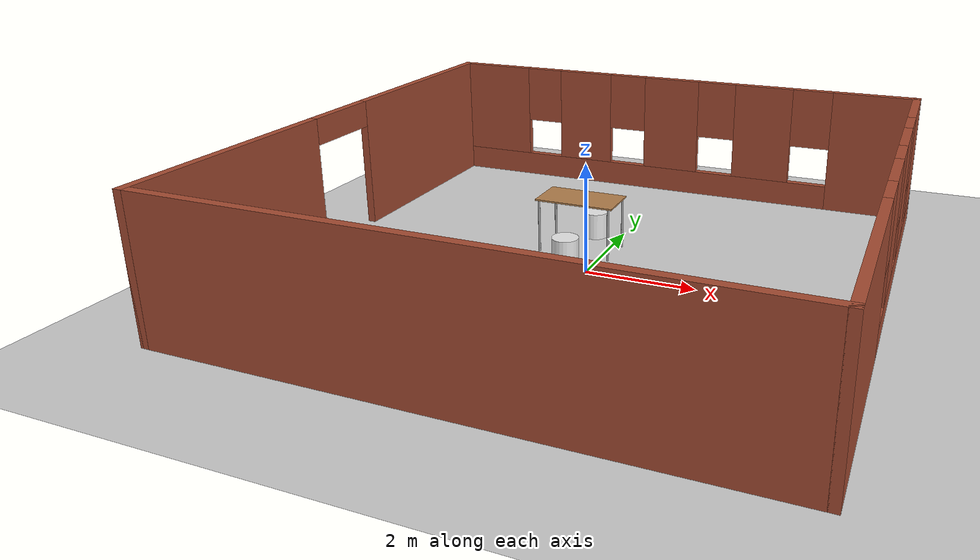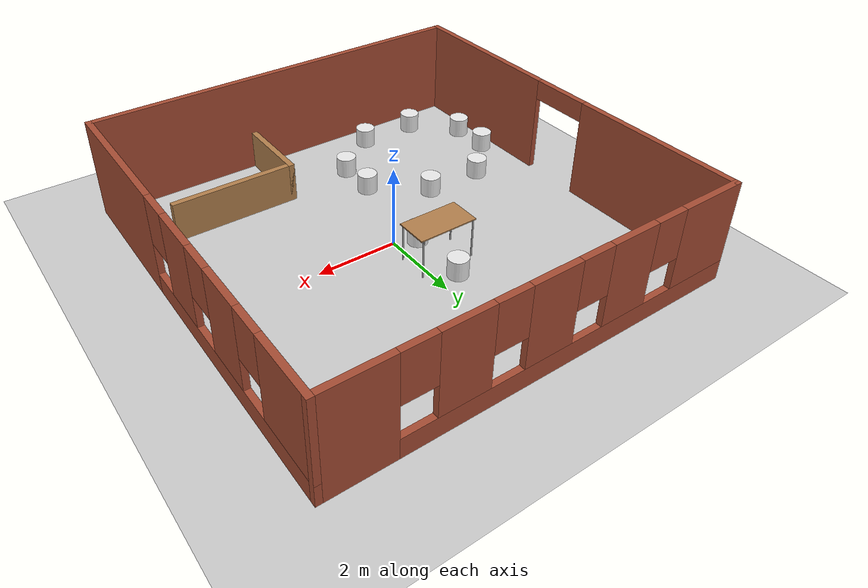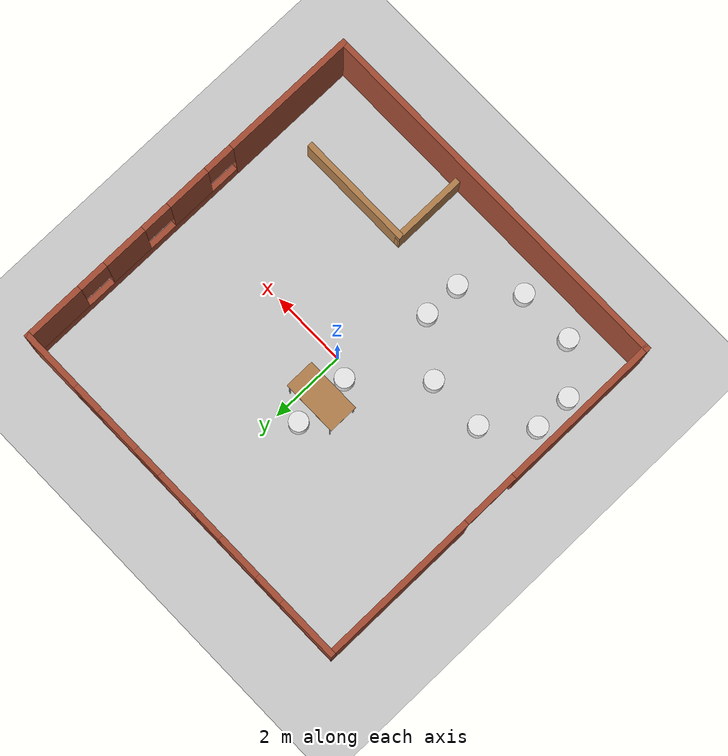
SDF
<sdf version="1.6">
 <world name="default">
  <model name="ground_plane">
   <static>1</static>
   <link name="link">
    <collision name="collision">
     <geometry><plane><normal>0 0 1</normal><size>100 100</size></plane></geometry>
     <surface>
      <contact><collide_bitmask>65535</collide_bitmask></contact>
      <friction><ode><mu>100</mu><mu2>50</mu2></ode></friction>
     </surface>
    </collision>
    <visual name="visual">
     <cast_shadows>0</cast_shadows>
     <geometry><plane><normal>0 0 1</normal><size>100 100</size></plane></geometry>
     <material>
      <script><uri>file://media/materials/scripts/gazebo.material</uri><name>Gazebo/Grey</name></script>
     </material>
    </visual>
   </link>
  </model>
  <model name="cafeteria">
   <link name="Wall_0">
    <collision name="Wall_0_Collision">
     <geometry><box><size>10.15 0.15 2.5</size></box></geometry>
     <pose>0 0 1.25 0 -0 0</pose>
    </collision>
    <visual name="Wall_0_Visual">
     <pose>0 0 1.25 0 -0 0</pose>
     <geometry><box><size>10.15 0.15 2.5</size></box></geometry>
     <material>
      <script><uri>file://media/materials/scripts/gazebo.material</uri><name>Gazebo/Bricks</name></script>
      <ambient>1 1 1 1</ambient>
     </material>
     <meta><layer>0</layer></meta>
    </visual>
    <pose>-0 -5 0 0 -0 0</pose>
   </link>
   <link name="Wall_1">
    <pose>5 -0 0 0 -0 1.5708</pose>
    <visual name="Wall_1_Visual_0">
     <pose>-3.2375 0 1.25 0 -0 0</pose>
     <geometry><box><size>3.675 0.15 2.5</size></box></geometry>
     <material>
      <script><uri>file://media/materials/scripts/gazebo.material</uri><name>Gazebo/Bricks</name></script>
      <ambient>1 1 1 1</ambient>
     </material>
     <meta><layer>0</layer></meta>
    </visual>
    <collision name="Wall_1_Collision_0">
     <geometry><box><size>3.675 0.15 2.5</size></box></geometry>
     <pose>-3.2375 0 1.25 0 -0 0</pose>
    </collision>
    <visual name="Wall_1_Visual_1">
     <pose>1.8375 0 0.25 0 -0 0</pose>
     <geometry><box><size>6.475 0.15 0.5</size></box></geometry>
     <material>
      <script><uri>file://media/materials/scripts/gazebo.material</uri><name>Gazebo/Bricks</name></script>
      <ambient>1 1 1 1</ambient>
     </material>
     <meta><layer>0</layer></meta>
    </visual>
    <collision name="Wall_1_Collision_1">
     <geometry><box><size>6.475 0.15 0.5</size></box></geometry>
     <pose>1.8375 0 0.25 0 -0 0</pose>
    </collision>
    <visual name="Wall_1_Visual_2">
     <pose>0 0 1.5 0 -0 0</pose>
     <geometry><box><size>1.2 0.15 2</size></box></geometry>
     <material>
      <script><uri>file://media/materials/scripts/gazebo.material</uri><name>Gazebo/Bricks</name></script>
      <ambient>1 1 1 1</ambient>
     </material>
     <meta><layer>0</layer></meta>
    </visual>
    <collision name="Wall_1_Collision_2">
     <geometry><box><size>1.2 0.15 2</size></box></geometry>
     <pose>0 0 1.5 0 -0 0</pose>
    </collision>
    <visual name="Wall_1_Visual_3">
     <pose>2 0 1.5 0 -0 0</pose>
     <geometry><box><size>1.2 0.15 2</size></box></geometry>
     <material>
      <script><uri>file://media/materials/scripts/gazebo.material</uri><name>Gazebo/Bricks</name></script>
      <ambient>1 1 1 1</ambient>
     </material>
     <meta><layer>0</layer></meta>
    </visual>
    <collision name="Wall_1_Collision_3">
     <geometry><box><size>1.2 0.15 2</size></box></geometry>
     <pose>2 0 1.5 0 -0 0</pose>
    </collision>
    <visual name="Wall_1_Visual_4">
     <pose>4.2375 0 1.5 0 -0 0</pose>
     <geometry><box><size>1.675 0.15 2</size></box></geometry>
     <material>
      <script><uri>file://media/materials/scripts/gazebo.material</uri><name>Gazebo/Bricks</name></script>
      <ambient>1 1 1 1</ambient>
     </material>
     <meta><layer>0</layer></meta>
    </visual>
    <collision name="Wall_1_Collision_4">
     <geometry><box><size>1.675 0.15 2</size></box></geometry>
     <pose>4.2375 0 1.5 0 -0 0</pose>
    </collision>
    <visual name="Wall_1_Visual_5">
     <pose>-1 0 1.9 0 -0 0</pose>
     <geometry><box><size>0.8 0.15 1.2</size></box></geometry>
     <material>
      <script><uri>file://media/materials/scripts/gazebo.material</uri><name>Gazebo/Bricks</name></script>
      <ambient>1 1 1 1</ambient>
     </material>
     <meta><layer>0</layer></meta>
    </visual>
    <collision name="Wall_1_Collision_5">
     <geometry><box><size>0.8 0.15 1.2</size></box></geometry>
     <pose>-1 0 1.9 0 -0 0</pose>
    </collision>
    <visual name="Wall_1_Visual_6">
     <pose>1 0 1.9 0 -0 0</pose>
     <geometry><box><size>0.8 0.15 1.2</size></box></geometry>
     <material>
      <script><uri>file://media/materials/scripts/gazebo.material</uri><name>Gazebo/Bricks</name></script>
      <ambient>1 1 1 1</ambient>
     </material>
     <meta><layer>0</layer></meta>
    </visual>
    <collision name="Wall_1_Collision_6">
     <geometry><box><size>0.8 0.15 1.2</size></box></geometry>
     <pose>1 0 1.9 0 -0 0</pose>
    </collision>
    <visual name="Wall_1_Visual_7">
     <pose>3 0 1.9 0 -0 0</pose>
     <geometry><box><size>0.8 0.15 1.2</size></box></geometry>
     <material>
      <script><uri>file://media/materials/scripts/gazebo.material</uri><name>Gazebo/Bricks</name></script>
      <ambient>1 1 1 1</ambient>
     </material>
     <meta><layer>0</layer></meta>
    </visual>
    <collision name="Wall_1_Collision_7">
     <geometry><box><size>0.8 0.15 1.2</size></box></geometry>
     <pose>3 0 1.9 0 -0 0</pose>
    </collision>
   </link>
   <link name="Wall_2">
    <pose>-0 5 0 0 -0 3.14159</pose>
    <visual name="Wall_2_Visual_0">
     <pose>-4.2375 0 1.25 0 -0 0</pose>
     <geometry><box><size>1.675 0.15 2.5</size></box></geometry>
     <material>
      <script><uri>file://media/materials/scripts/gazebo.material</uri><name>Gazebo/Bricks</name></script>
      <ambient>1 1 1 1</ambient>
     </material>
     <meta><layer>0</layer></meta>
    </visual>
    <collision name="Wall_2_Collision_0">
     <geometry><box><size>1.675 0.15 2.5</size></box></geometry>
     <pose>-4.2375 0 1.25 0 -0 0</pose>
    </collision>
    <visual name="Wall_2_Visual_1">
     <pose>0.8375 0 0.25 0 -0 0</pose>
     <geometry><box><size>8.475 0.15 0.5</size></box></geometry>
     <material>
      <script><uri>file://media/materials/scripts/gazebo.material</uri><name>Gazebo/Bricks</name></script>
      <ambient>1 1 1 1</ambient>
     </material>
     <meta><layer>0</layer></meta>
    </visual>
    <collision name="Wall_2_Collision_1">
     <geometry><box><size>8.475 0.15 0.5</size></box></geometry>
     <pose>0.8375 0 0.25 0 -0 0</pose>
    </collision>
    <visual name="Wall_2_Visual_2">
     <pose>-2 0 1.5 0 -0 0</pose>
     <geometry><box><size>1.2 0.15 2</size></box></geometry>
     <material>
      <script><uri>file://media/materials/scripts/gazebo.material</uri><name>Gazebo/Bricks</name></script>
      <ambient>1 1 1 1</ambient>
     </material>
     <meta><layer>0</layer></meta>
    </visual>
    <collision name="Wall_2_Collision_2">
     <geometry><box><size>1.2 0.15 2</size></box></geometry>
     <pose>-2 0 1.5 0 -0 0</pose>
    </collision>
    <visual name="Wall_2_Visual_3">
     <pose>0 0 1.5 0 -0 0</pose>
     <geometry><box><size>1.2 0.15 2</size></box></geometry>
     <material>
      <script><uri>file://media/materials/scripts/gazebo.material</uri><name>Gazebo/Bricks</name></script>
      <ambient>1 1 1 1</ambient>
     </material>
     <meta><layer>0</layer></meta>
    </visual>
    <collision name="Wall_2_Collision_3">
     <geometry><box><size>1.2 0.15 2</size></box></geometry>
     <pose>0 0 1.5 0 -0 0</pose>
    </collision>
    <visual name="Wall_2_Visual_4">
     <pose>2 0 1.5 0 -0 0</pose>
     <geometry><box><size>1.2 0.15 2</size></box></geometry>
     <material>
      <script><uri>file://media/materials/scripts/gazebo.material</uri><name>Gazebo/Bricks</name></script>
      <ambient>1 1 1 1</ambient>
     </material>
     <meta><layer>0</layer></meta>
    </visual>
    <collision name="Wall_2_Collision_4">
     <geometry><box><size>1.2 0.15 2</size></box></geometry>
     <pose>2 0 1.5 0 -0 0</pose>
    </collision>
    <visual name="Wall_2_Visual_5">
     <pose>4.2375 0 1.5 0 -0 0</pose>
     <geometry><box><size>1.675 0.15 2</size></box></geometry>
     <material>
      <script><uri>file://media/materials/scripts/gazebo.material</uri><name>Gazebo/Bricks</name></script>
      <ambient>1 1 1 1</ambient>
     </material>
     <meta><layer>0</layer></meta>
    </visual>
    <collision name="Wall_2_Collision_5">
     <geometry><box><size>1.675 0.15 2</size></box></geometry>
     <pose>4.2375 0 1.5 0 -0 0</pose>
    </collision>
    <visual name="Wall_2_Visual_6">
     <pose>-3 0 1.9 0 -0 0</pose>
     <geometry><box><size>0.8 0.15 1.2</size></box></geometry>
     <material>
      <script><uri>file://media/materials/scripts/gazebo.material</uri><name>Gazebo/Bricks</name></script>
      <ambient>1 1 1 1</ambient>
     </material>
     <meta><layer>0</layer></meta>
    </visual>
    <collision name="Wall_2_Collision_6">
     <geometry><box><size>0.8 0.15 1.2</size></box></geometry>
     <pose>-3 0 1.9 0 -0 0</pose>
    </collision>
    <visual name="Wall_2_Visual_7">
     <pose>-1 0 1.9 0 -0 0</pose>
     <geometry><box><size>0.8 0.15 1.2</size></box></geometry>
     <material>
      <script><uri>file://media/materials/scripts/gazebo.material</uri><name>Gazebo/Bricks</name></script>
      <ambient>1 1 1 1</ambient>
     </material>
     <meta><layer>0</layer></meta>
    </visual>
    <collision name="Wall_2_Collision_7">
     <geometry><box><size>0.8 0.15 1.2</size></box></geometry>
     <pose>-1 0 1.9 0 -0 0</pose>
    </collision>
    <visual name="Wall_2_Visual_8">
     <pose>1 0 1.9 0 -0 0</pose>
     <geometry><box><size>0.8 0.15 1.2</size></box></geometry>
     <material>
      <script><uri>file://media/materials/scripts/gazebo.material</uri><name>Gazebo/Bricks</name></script>
      <ambient>1 1 1 1</ambient>
     </material>
     <meta><layer>0</layer></meta>
    </visual>
    <collision name="Wall_2_Collision_8">
     <geometry><box><size>0.8 0.15 1.2</size></box></geometry>
     <pose>1 0 1.9 0 -0 0</pose>
    </collision>
    <visual name="Wall_2_Visual_9">
     <pose>3 0 1.9 0 -0 0</pose>
     <geometry><box><size>0.8 0.15 1.2</size></box></geometry>
     <material>
      <script><uri>file://media/materials/scripts/gazebo.material</uri><name>Gazebo/Bricks</name></script>
      <ambient>1 1 1 1</ambient>
     </material>
     <meta><layer>0</layer></meta>
    </visual>
    <collision name="Wall_2_Collision_9">
     <geometry><box><size>0.8 0.15 1.2</size></box></geometry>
     <pose>3 0 1.9 0 -0 0</pose>
    </collision>
   </link>
   <link name="Wall_3">
    <pose>-5 -0 0 0 -0 -1.5708</pose>
    <visual name="Wall_3_Visual_0">
     <pose>-2.9125 0 1.25 0 -0 0</pose>
     <geometry><box><size>4.325 0.15 2.5</size></box></geometry>
     <material>
      <script><uri>file://media/materials/scripts/gazebo.material</uri><name>Gazebo/Bricks</name></script>
      <ambient>1 1 1 1</ambient>
     </material>
     <meta><layer>0</layer></meta>
    </visual>
    <collision name="Wall_3_Collision_0">
     <geometry><box><size>4.325 0.15 2.5</size></box></geometry>
     <pose>-2.9125 0 1.25 0 -0 0</pose>
    </collision>
    <visual name="Wall_3_Visual_1">
     <pose>2.9125 0 1.25 0 -0 0</pose>
     <geometry><box><size>4.325 0.15 2.5</size></box></geometry>
     <material>
      <script><uri>file://media/materials/scripts/gazebo.material</uri><name>Gazebo/Bricks</name></script>
      <ambient>1 1 1 1</ambient>
     </material>
     <meta><layer>0</layer></meta>
    </visual>
    <collision name="Wall_3_Collision_1">
     <geometry><box><size>4.325 0.15 2.5</size></box></geometry>
     <pose>2.9125 0 1.25 0 -0 0</pose>
    </collision>
    <visual name="Wall_3_Visual_2">
     <pose>0 0 2.25 0 -0 0</pose>
     <geometry><box><size>1.5 0.15 0.5</size></box></geometry>
     <material>
      <script><uri>file://media/materials/scripts/gazebo.material</uri><name>Gazebo/Bricks</name></script>
      <ambient>1 1 1 1</ambient>
     </material>
     <meta><layer>0</layer></meta>
    </visual>
    <collision name="Wall_3_Collision_2">
     <geometry><box><size>1.5 0.15 0.5</size></box></geometry>
     <pose>0 0 2.25 0 -0 0</pose>
    </collision>
   </link>
   <link name="Wall_5">
    <collision name="Wall_5_Collision">
     <geometry><box><size>2.06 0.15 1</size></box></geometry>
     <pose>0 0 0.5 0 -0 0</pose>
    </collision>
    <visual name="Wall_5_Visual">
     <pose>0 0 0.5 0 -0 0</pose>
     <geometry><box><size>2.06 0.15 1</size></box></geometry>
     <material>
      <script><uri>file://media/materials/scripts/gazebo.material</uri><name>Gazebo/Wood</name></script>
      <ambient>1 1 1 1</ambient>
     </material>
     <meta><layer>0</layer></meta>
    </visual>
    <pose>1 -3.955 0 0 -0 1.5708</pose>
   </link>
   <link name="Wall_6">
    <collision name="Wall_6_Collision">
     <geometry><box><size>3.15 0.15 1</size></box></geometry>
     <pose>0 0 0.5 0 -0 0</pose>
    </collision>
    <visual name="Wall_6_Visual">
     <pose>0 0 0.5 0 -0 0</pose>
     <geometry><box><size>3.15 0.15 1</size></box></geometry>
     <material>
      <script><uri>file://media/materials/scripts/gazebo.material</uri><name>Gazebo/Wood</name></script>
      <ambient>1 1 1 1</ambient>
     </material>
     <meta><layer>0</layer></meta>
    </visual>
    <pose>2.5 -3 0 0 -0 0</pose>
   </link>
   <static>1</static>
  </model>
  <model name="table_0">
   <static>1</static>
   <link name="link">
    <collision name="surface">
     <pose>0 0 1 0 -0 0</pose>
     <geometry><box><size>1.5 0.8 0.03</size></box></geometry>
     <surface><friction><ode><mu>0.6</mu><mu2>0.6</mu2></ode></friction></surface>
    </collision>
    <visual name="visual1">
     <pose>0 0 1 0 -0 0</pose>
     <geometry><box><size>1.5 0.8 0.03</size></box></geometry>
     <material>
      <script><uri>file://media/materials/scripts/gazebo.material</uri><name>Gazebo/Wood</name></script>
     </material>
    </visual>
    <collision name="front_left_leg">
     <pose>0.68 0.38 0.5 0 -0 0</pose>
     <geometry><cylinder><radius>0.02</radius><length>1</length></cylinder></geometry>
    </collision>
    <visual name="front_left_leg">
     <pose>0.68 0.38 0.5 0 -0 0</pose>
     <geometry><cylinder><radius>0.02</radius><length>1</length></cylinder></geometry>
     <material>
      <script><uri>file://media/materials/scripts/gazebo.material</uri><name>Gazebo/Grey</name></script>
     </material>
    </visual>
    <collision name="front_right_leg">
     <pose>0.68 -0.38 0.5 0 -0 0</pose>
     <geometry><cylinder><radius>0.02</radius><length>1</length></cylinder></geometry>
    </collision>
    <visual name="front_right_leg">
     <pose>0.68 -0.38 0.5 0 -0 0</pose>
     <geometry><cylinder><radius>0.02</radius><length>1</length></cylinder></geometry>
     <material>
      <script><uri>file://media/materials/scripts/gazebo.material</uri><name>Gazebo/Grey</name></script>
     </material>
    </visual>
    <collision name="back_right_leg">
     <pose>-0.68 -0.38 0.5 0 -0 0</pose>
     <geometry><cylinder><radius>0.02</radius><length>1</length></cylinder></geometry>
    </collision>
    <visual name="back_right_leg">
     <pose>-0.68 -0.38 0.5 0 -0 0</pose>
     <geometry><cylinder><radius>0.02</radius><length>1</length></cylinder></geometry>
     <material>
      <script><uri>file://media/materials/scripts/gazebo.material</uri><name>Gazebo/Grey</name></script>
     </material>
    </visual>
    <collision name="back_left_leg">
     <pose>-0.68 0.38 0.5 0 -0 0</pose>
     <geometry><cylinder><radius>0.02</radius><length>1</length></cylinder></geometry>
    </collision>
    <visual name="back_left_leg">
     <pose>-0.68 0.38 0.5 0 -0 0</pose>
     <geometry><cylinder><radius>0.02</radius><length>1</length></cylinder></geometry>
     <material>
      <script><uri>file://media/materials/scripts/gazebo.material</uri><name>Gazebo/Grey</name></script>
     </material>
    </visual>
   </link>
   <pose>-0.5 1 0 0 -0 0</pose>
  </model>
  <model name="chair3_1">
   <link name="link_1">
    <inertial>
     <mass>1</mass>
     <inertia><ixx>0.145833</ixx><ixy>0</ixy><ixz>0</ixz><iyy>0.145833</iyy><iyz>0</iyz><izz>0.125</izz></inertia>
    </inertial>
    <visual name="visual">
     <geometry><cylinder><radius>0.25</radius><length>0.5</length></cylinder></geometry>
     <material>
      <lighting>1</lighting>
      <script><uri>file://media/materials/scripts/gazebo.material</uri><name>Gazebo/White</name></script>
      <shader type="vertex"><normal_map>__default__</normal_map></shader>
      <ambient>0.9 0.7 0.5 1</ambient>
      <diffuse>0.7 0.7 0.7 1</diffuse>
      <specular>0.01 0.01 0.01 1</specular>
      <emissive>0 0 0 1</emissive>
     </material>
    </visual>
    <collision name="collision">
     <geometry><cylinder><radius>0.25</radius><length>0.5</length></cylinder></geometry>
     <surface>
      <friction>
       <ode><mu>1</mu><mu2>1</mu2><fdir1>0 0 0</fdir1><slip1>0</slip1><slip2>0</slip2></ode>
       <torsional>
        <coefficient>1</coefficient>
        <patch_radius>0</patch_radius>
        <surface_radius>0</surface_radius>
        <use_patch_radius>1</use_patch_radius>
        <ode><slip>0</slip></ode>
       </torsional>
      </friction>
      <bounce><restitution_coefficient>0</restitution_coefficient><threshold>1e+06</threshold></bounce>
      <contact>
       <collide_without_contact>0</collide_without_contact>
       <collide_without_contact_bitmask>1</collide_without_contact_bitmask>
       <collide_bitmask>1</collide_bitmask>
       <ode>
        <soft_cfm>0</soft_cfm>
        <soft_erp>0.2</soft_erp>
        <kp>1e+13</kp>
        <kd>1</kd>
        <max_vel>0.01</max_vel>
        <min_depth>0</min_depth>
       </ode>
       <bullet>
        <split_impulse>1</split_impulse>
        <split_impulse_penetration_threshold>-0.01</split_impulse_penetration_threshold>
        <soft_cfm>0</soft_cfm>
        <soft_erp>0.2</soft_erp>
        <kp>1e+13</kp>
        <kd>1</kd>
       </bullet>
      </contact>
     </surface>
    </collision>
   </link>
   <link name="link_1_clone">
    <inertial>
     <mass>1</mass>
     <inertia><ixx>0.145833</ixx><ixy>0</ixy><ixz>0</ixz><iyy>0.145833</iyy><iyz>0</iyz><izz>0.125</izz></inertia>
    </inertial>
    <pose>0 -1.5 0 0 -0 0</pose>
    <visual name="visual">
     <geometry><cylinder><radius>0.25</radius><length>0.5</length></cylinder></geometry>
     <material>
      <lighting>1</lighting>
      <script><uri>file://media/materials/scripts/gazebo.material</uri><name>Gazebo/White</name></script>
      <shader type="vertex"><normal_map>__default__</normal_map></shader>
      <ambient>0.9 0.7 0.5 1</ambient>
      <diffuse>0.7 0.7 0.7 1</diffuse>
      <specular>0.01 0.01 0.01 1</specular>
      <emissive>0 0 0 1</emissive>
     </material>
    </visual>
    <collision name="collision">
     <geometry><cylinder><radius>0.25</radius><length>0.5</length></cylinder></geometry>
     <surface>
      <friction>
       <ode><mu>1</mu><mu2>1</mu2><fdir1>0 0 0</fdir1><slip1>0</slip1><slip2>0</slip2></ode>
       <torsional>
        <coefficient>1</coefficient>
        <patch_radius>0</patch_radius>
        <surface_radius>0</surface_radius>
        <use_patch_radius>1</use_patch_radius>
        <ode><slip>0</slip></ode>
       </torsional>
      </friction>
      <bounce><restitution_coefficient>0</restitution_coefficient><threshold>1e+06</threshold></bounce>
      <contact>
       <collide_without_contact>0</collide_without_contact>
       <collide_without_contact_bitmask>1</collide_without_contact_bitmask>
       <collide_bitmask>1</collide_bitmask>
       <ode>
        <soft_cfm>0</soft_cfm>
        <soft_erp>0.2</soft_erp>
        <kp>1e+13</kp>
        <kd>1</kd>
        <max_vel>0.01</max_vel>
        <min_depth>0</min_depth>
       </ode>
       <bullet>
        <split_impulse>1</split_impulse>
        <split_impulse_penetration_threshold>-0.01</split_impulse_penetration_threshold>
        <soft_cfm>0</soft_cfm>
        <soft_erp>0.2</soft_erp>
        <kp>1e+13</kp>
        <kd>1</kd>
       </bullet>
      </contact>
     </surface>
    </collision>
   </link>
   <static>0</static>
   <pose>-0.5 1.75 0.25 0 -0 0</pose>
  </model>
  <model name="chair4">
   <link name="link_1">
    <inertial>
     <mass>1</mass>
     <inertia><ixx>0.145833</ixx><ixy>0</ixy><ixz>0</ixz><iyy>0.145833</iyy><iyz>0</iyz><izz>0.125</izz></inertia>
    </inertial>
    <visual name="visual">
     <geometry><cylinder><radius>0.25</radius><length>0.5</length></cylinder></geometry>
     <material>
      <lighting>1</lighting>
      <script><uri>file://media/materials/scripts/gazebo.material</uri><name>Gazebo/White</name></script>
      <shader type="vertex"><normal_map>__default__</normal_map></shader>
      <ambient>0.9 0.7 0.5 1</ambient>
      <diffuse>0.7 0.7 0.7 1</diffuse>
      <specular>0.01 0.01 0.01 1</specular>
      <emissive>0 0 0 1</emissive>
     </material>
    </visual>
    <collision name="collision">
     <geometry><cylinder><radius>0.25</radius><length>0.5</length></cylinder></geometry>
     <surface>
      <friction>
       <ode><mu>1</mu><mu2>1</mu2><fdir1>0 0 0</fdir1><slip1>0</slip1><slip2>0</slip2></ode>
       <torsional>
        <coefficient>1</coefficient>
        <patch_radius>0</patch_radius>
        <surface_radius>0</surface_radius>
        <use_patch_radius>1</use_patch_radius>
        <ode><slip>0</slip></ode>
       </torsional>
      </friction>
      <bounce><restitution_coefficient>0</restitution_coefficient><threshold>1e+06</threshold></bounce>
      <contact>
       <collide_without_contact>0</collide_without_contact>
       <collide_without_contact_bitmask>1</collide_without_contact_bitmask>
       <collide_bitmask>1</collide_bitmask>
       <ode>
        <soft_cfm>0</soft_cfm>
        <soft_erp>0.2</soft_erp>
        <kp>1e+13</kp>
        <kd>1</kd>
        <max_vel>0.01</max_vel>
        <min_depth>0</min_depth>
       </ode>
       <bullet>
        <split_impulse>1</split_impulse>
        <split_impulse_penetration_threshold>-0.01</split_impulse_penetration_threshold>
        <soft_cfm>0</soft_cfm>
        <soft_erp>0.2</soft_erp>
        <kp>1e+13</kp>
        <kd>1</kd>
       </bullet>
      </contact>
     </surface>
    </collision>
   </link>
   <link name="link_1_clone">
    <inertial>
     <mass>1</mass>
     <inertia><ixx>0.145833</ixx><ixy>0</ixy><ixz>0</ixz><iyy>0.145833</iyy><iyz>0</iyz><izz>0.125</izz></inertia>
    </inertial>
    <pose>0 -1 0 0 -0 0</pose>
    <visual name="visual">
     <geometry><cylinder><radius>0.25</radius><length>0.5</length></cylinder></geometry>
     <material>
      <lighting>1</lighting>
      <script><uri>file://media/materials/scripts/gazebo.material</uri><name>Gazebo/White</name></script>
      <shader type="vertex"><normal_map>__default__</normal_map></shader>
      <ambient>0.9 0.7 0.5 1</ambient>
      <diffuse>0.7 0.7 0.7 1</diffuse>
      <specular>0.01 0.01 0.01 1</specular>
      <emissive>0 0 0 1</emissive>
     </material>
    </visual>
    <collision name="collision">
     <geometry><cylinder><radius>0.25</radius><length>0.5</length></cylinder></geometry>
     <surface>
      <friction>
       <ode><mu>1</mu><mu2>1</mu2><fdir1>0 0 0</fdir1><slip1>0</slip1><slip2>0</slip2></ode>
       <torsional>
        <coefficient>1</coefficient>
        <patch_radius>0</patch_radius>
        <surface_radius>0</surface_radius>
        <use_patch_radius>1</use_patch_radius>
        <ode><slip>0</slip></ode>
       </torsional>
      </friction>
      <bounce><restitution_coefficient>0</restitution_coefficient><threshold>1e+06</threshold></bounce>
      <contact>
       <collide_without_contact>0</collide_without_contact>
       <collide_without_contact_bitmask>1</collide_without_contact_bitmask>
       <collide_bitmask>1</collide_bitmask>
       <ode>
        <soft_cfm>0</soft_cfm>
        <soft_erp>0.2</soft_erp>
        <kp>1e+13</kp>
        <kd>1</kd>
        <max_vel>0.01</max_vel>
        <min_depth>0</min_depth>
       </ode>
       <bullet>
        <split_impulse>1</split_impulse>
        <split_impulse_penetration_threshold>-0.01</split_impulse_penetration_threshold>
        <soft_cfm>0</soft_cfm>
        <soft_erp>0.2</soft_erp>
        <kp>1e+13</kp>
        <kd>1</kd>
       </bullet>
      </contact>
     </surface>
    </collision>
   </link>
   <static>0</static>
   <pose>-4.5 -2.25 0.25 0 -0 0</pose>
  </model>
  <model name="chair4_0">
   <link name="link_1">
    <inertial>
     <mass>1</mass>
     <inertia><ixx>0.145833</ixx><ixy>0</ixy><ixz>0</ixz><iyy>0.145833</iyy><iyz>0</iyz><izz>0.125</izz></inertia>
    </inertial>
    <visual name="visual">
     <geometry><cylinder><radius>0.25</radius><length>0.5</length></cylinder></geometry>
     <material>
      <lighting>1</lighting>
      <script><uri>file://media/materials/scripts/gazebo.material</uri><name>Gazebo/White</name></script>
      <shader type="vertex"><normal_map>__default__</normal_map></shader>
      <ambient>0.9 0.7 0.5 1</ambient>
      <diffuse>0.7 0.7 0.7 1</diffuse>
      <specular>0.01 0.01 0.01 1</specular>
      <emissive>0 0 0 1</emissive>
     </material>
    </visual>
    <collision name="collision">
     <geometry><cylinder><radius>0.25</radius><length>0.5</length></cylinder></geometry>
     <surface>
      <friction>
       <ode><mu>1</mu><mu2>1</mu2><fdir1>0 0 0</fdir1><slip1>0</slip1><slip2>0</slip2></ode>
       <torsional>
        <coefficient>1</coefficient>
        <patch_radius>0</patch_radius>
        <surface_radius>0</surface_radius>
        <use_patch_radius>1</use_patch_radius>
        <ode><slip>0</slip></ode>
       </torsional>
      </friction>
      <bounce><restitution_coefficient>0</restitution_coefficient><threshold>1e+06</threshold></bounce>
      <contact>
       <collide_without_contact>0</collide_without_contact>
       <collide_without_contact_bitmask>1</collide_without_contact_bitmask>
       <collide_bitmask>1</collide_bitmask>
       <ode>
        <soft_cfm>0</soft_cfm>
        <soft_erp>0.2</soft_erp>
        <kp>1e+13</kp>
        <kd>1</kd>
        <max_vel>0.01</max_vel>
        <min_depth>0</min_depth>
       </ode>
       <bullet>
        <split_impulse>1</split_impulse>
        <split_impulse_penetration_threshold>-0.01</split_impulse_penetration_threshold>
        <soft_cfm>0</soft_cfm>
        <soft_erp>0.2</soft_erp>
        <kp>1e+13</kp>
        <kd>1</kd>
       </bullet>
      </contact>
     </surface>
    </collision>
   </link>
   <link name="link_1_clone">
    <inertial>
     <mass>1</mass>
     <inertia><ixx>0.145833</ixx><ixy>0</ixy><ixz>0</ixz><iyy>0.145833</iyy><iyz>0</iyz><izz>0.125</izz></inertia>
    </inertial>
    <pose>0 -1 0 0 -0 0</pose>
    <visual name="visual">
     <geometry><cylinder><radius>0.25</radius><length>0.5</length></cylinder></geometry>
     <material>
      <lighting>1</lighting>
      <script><uri>file://media/materials/scripts/gazebo.material</uri><name>Gazebo/White</name></script>
      <shader type="vertex"><normal_map>__default__</normal_map></shader>
      <ambient>0.9 0.7 0.5 1</ambient>
      <diffuse>0.7 0.7 0.7 1</diffuse>
      <specular>0.01 0.01 0.01 1</specular>
      <emissive>0 0 0 1</emissive>
     </material>
    </visual>
    <collision name="collision">
     <geometry><cylinder><radius>0.25</radius><length>0.5</length></cylinder></geometry>
     <surface>
      <friction>
       <ode><mu>1</mu><mu2>1</mu2><fdir1>0 0 0</fdir1><slip1>0</slip1><slip2>0</slip2></ode>
       <torsional>
        <coefficient>1</coefficient>
        <patch_radius>0</patch_radius>
        <surface_radius>0</surface_radius>
        <use_patch_radius>1</use_patch_radius>
        <ode><slip>0</slip></ode>
       </torsional>
      </friction>
      <bounce><restitution_coefficient>0</restitution_coefficient><threshold>1e+06</threshold></bounce>
      <contact>
       <collide_without_contact>0</collide_without_contact>
       <collide_without_contact_bitmask>1</collide_without_contact_bitmask>
       <collide_bitmask>1</collide_bitmask>
       <ode>
        <soft_cfm>0</soft_cfm>
        <soft_erp>0.2</soft_erp>
        <kp>1e+13</kp>
        <kd>1</kd>
        <max_vel>0.01</max_vel>
        <min_depth>0</min_depth>
       </ode>
       <bullet>
        <split_impulse>1</split_impulse>
        <split_impulse_penetration_threshold>-0.01</split_impulse_penetration_threshold>
        <soft_cfm>0</soft_cfm>
        <soft_erp>0.2</soft_erp>
        <kp>1e+13</kp>
        <kd>1</kd>
       </bullet>
      </contact>
     </surface>
    </collision>
   </link>
   <static>0</static>
   <pose>-0.75 -2.25 0.25 0 -0 0</pose>
  </model>
  <model name="chair5">
   <link name="link_1">
    <inertial>
     <mass>1</mass>
     <inertia><ixx>0.145833</ixx><ixy>0</ixy><ixz>0</ixz><iyy>0.145833</iyy><iyz>0</iyz><izz>0.125</izz></inertia>
    </inertial>
    <visual name="visual">
     <geometry><cylinder><radius>0.25</radius><length>0.5</length></cylinder></geometry>
     <material>
      <lighting>1</lighting>
      <script><uri>file://media/materials/scripts/gazebo.material</uri><name>Gazebo/White</name></script>
      <shader type="vertex"><normal_map>__default__</normal_map></shader>
      <ambient>0.9 0.7 0.5 1</ambient>
      <diffuse>0.7 0.7 0.7 1</diffuse>
      <specular>0.01 0.01 0.01 1</specular>
      <emissive>0 0 0 1</emissive>
     </material>
    </visual>
    <collision name="collision">
     <geometry><cylinder><radius>0.25</radius><length>0.5</length></cylinder></geometry>
     <surface>
      <friction>
       <ode><mu>1</mu><mu2>1</mu2><fdir1>0 0 0</fdir1><slip1>0</slip1><slip2>0</slip2></ode>
       <torsional>
        <coefficient>1</coefficient>
        <patch_radius>0</patch_radius>
        <surface_radius>0</surface_radius>
        <use_patch_radius>1</use_patch_radius>
        <ode><slip>0</slip></ode>
       </torsional>
      </friction>
      <bounce><restitution_coefficient>0</restitution_coefficient><threshold>1e+06</threshold></bounce>
      <contact>
       <collide_without_contact>0</collide_without_contact>
       <collide_without_contact_bitmask>1</collide_without_contact_bitmask>
       <collide_bitmask>1</collide_bitmask>
       <ode>
        <soft_cfm>0</soft_cfm>
        <soft_erp>0.2</soft_erp>
        <kp>1e+13</kp>
        <kd>1</kd>
        <max_vel>0.01</max_vel>
        <min_depth>0</min_depth>
       </ode>
       <bullet>
        <split_impulse>1</split_impulse>
        <split_impulse_penetration_threshold>-0.01</split_impulse_penetration_threshold>
        <soft_cfm>0</soft_cfm>
        <soft_erp>0.2</soft_erp>
        <kp>1e+13</kp>
        <kd>1</kd>
       </bullet>
      </contact>
     </surface>
    </collision>
   </link>
   <link name="link_1_clone">
    <inertial>
     <mass>1</mass>
     <inertia><ixx>0.145833</ixx><ixy>0</ixy><ixz>0</ixz><iyy>0.145833</iyy><iyz>0</iyz><izz>0.125</izz></inertia>
    </inertial>
    <pose>-1.5 0 0 0 -0 0</pose>
    <visual name="visual">
     <geometry><cylinder><radius>0.25</radius><length>0.5</length></cylinder></geometry>
     <material>
      <lighting>1</lighting>
      <script><uri>file://media/materials/scripts/gazebo.material</uri><name>Gazebo/White</name></script>
      <shader type="vertex"><normal_map>__default__</normal_map></shader>
      <ambient>0.9 0.7 0.5 1</ambient>
      <diffuse>0.7 0.7 0.7 1</diffuse>
      <specular>0.01 0.01 0.01 1</specular>
      <emissive>0 0 0 1</emissive>
     </material>
    </visual>
    <collision name="collision">
     <geometry><cylinder><radius>0.25</radius><length>0.5</length></cylinder></geometry>
     <surface>
      <friction>
       <ode><mu>1</mu><mu2>1</mu2><fdir1>0 0 0</fdir1><slip1>0</slip1><slip2>0</slip2></ode>
       <torsional>
        <coefficient>1</coefficient>
        <patch_radius>0</patch_radius>
        <surface_radius>0</surface_radius>
        <use_patch_radius>1</use_patch_radius>
        <ode><slip>0</slip></ode>
       </torsional>
      </friction>
      <bounce><restitution_coefficient>0</restitution_coefficient><threshold>1e+06</threshold></bounce>
      <contact>
       <collide_without_contact>0</collide_without_contact>
       <collide_without_contact_bitmask>1</collide_without_contact_bitmask>
       <collide_bitmask>1</collide_bitmask>
       <ode>
        <soft_cfm>0</soft_cfm>
        <soft_erp>0.2</soft_erp>
        <kp>1e+13</kp>
        <kd>1</kd>
        <max_vel>0.01</max_vel>
        <min_depth>0</min_depth>
       </ode>
       <bullet>
        <split_impulse>1</split_impulse>
        <split_impulse_penetration_threshold>-0.01</split_impulse_penetration_threshold>
        <soft_cfm>0</soft_cfm>
        <soft_erp>0.2</soft_erp>
        <kp>1e+13</kp>
        <kd>1</kd>
       </bullet>
      </contact>
     </surface>
    </collision>
   </link>
   <static>0</static>
   <pose>-2 -1.25 0.25 0 -0 0</pose>
  </model>
  <model name="chair5_0">
   <link name="link_1">
    <inertial>
     <mass>1</mass>
     <inertia><ixx>0.145833</ixx><ixy>0</ixy><ixz>0</ixz><iyy>0.145833</iyy><iyz>0</iyz><izz>0.125</izz></inertia>
    </inertial>
    <visual name="visual">
     <geometry><cylinder><radius>0.25</radius><length>0.5</length></cylinder></geometry>
     <material>
      <lighting>1</lighting>
      <script><uri>file://media/materials/scripts/gazebo.material</uri><name>Gazebo/White</name></script>
      <shader type="vertex"><normal_map>__default__</normal_map></shader>
      <ambient>0.9 0.7 0.5 1</ambient>
      <diffuse>0.7 0.7 0.7 1</diffuse>
      <specular>0.01 0.01 0.01 1</specular>
      <emissive>0 0 0 1</emissive>
     </material>
    </visual>
    <collision name="collision">
     <geometry><cylinder><radius>0.25</radius><length>0.5</length></cylinder></geometry>
     <surface>
      <friction>
       <ode><mu>1</mu><mu2>1</mu2><fdir1>0 0 0</fdir1><slip1>0</slip1><slip2>0</slip2></ode>
       <torsional>
        <coefficient>1</coefficient>
        <patch_radius>0</patch_radius>
        <surface_radius>0</surface_radius>
        <use_patch_radius>1</use_patch_radius>
        <ode><slip>0</slip></ode>
       </torsional>
      </friction>
      <bounce><restitution_coefficient>0</restitution_coefficient><threshold>1e+06</threshold></bounce>
      <contact>
       <collide_without_contact>0</collide_without_contact>
       <collide_without_contact_bitmask>1</collide_without_contact_bitmask>
       <collide_bitmask>1</collide_bitmask>
       <ode>
        <soft_cfm>0</soft_cfm>
        <soft_erp>0.2</soft_erp>
        <kp>1e+13</kp>
        <kd>1</kd>
        <max_vel>0.01</max_vel>
        <min_depth>0</min_depth>
       </ode>
       <bullet>
        <split_impulse>1</split_impulse>
        <split_impulse_penetration_threshold>-0.01</split_impulse_penetration_threshold>
        <soft_cfm>0</soft_cfm>
        <soft_erp>0.2</soft_erp>
        <kp>1e+13</kp>
        <kd>1</kd>
       </bullet>
      </contact>
     </surface>
    </collision>
   </link>
   <link name="link_1_clone">
    <inertial>
     <mass>1</mass>
     <inertia><ixx>0.145833</ixx><ixy>0</ixy><ixz>0</ixz><iyy>0.145833</iyy><iyz>0</iyz><izz>0.125</izz></inertia>
    </inertial>
    <pose>-1.5 0 0 0 -0 0</pose>
    <visual name="visual">
     <geometry><cylinder><radius>0.25</radius><length>0.5</length></cylinder></geometry>
     <material>
      <lighting>1</lighting>
      <script><uri>file://media/materials/scripts/gazebo.material</uri><name>Gazebo/White</name></script>
      <shader type="vertex"><normal_map>__default__</normal_map></shader>
      <ambient>0.9 0.7 0.5 1</ambient>
      <diffuse>0.7 0.7 0.7 1</diffuse>
      <specular>0.01 0.01 0.01 1</specular>
      <emissive>0 0 0 1</emissive>
     </material>
    </visual>
    <collision name="collision">
     <geometry><cylinder><radius>0.25</radius><length>0.5</length></cylinder></geometry>
     <surface>
      <friction>
       <ode><mu>1</mu><mu2>1</mu2><fdir1>0 0 0</fdir1><slip1>0</slip1><slip2>0</slip2></ode>
       <torsional>
        <coefficient>1</coefficient>
        <patch_radius>0</patch_radius>
        <surface_radius>0</surface_radius>
        <use_patch_radius>1</use_patch_radius>
        <ode><slip>0</slip></ode>
       </torsional>
      </friction>
      <bounce><restitution_coefficient>0</restitution_coefficient><threshold>1e+06</threshold></bounce>
      <contact>
       <collide_without_contact>0</collide_without_contact>
       <collide_without_contact_bitmask>1</collide_without_contact_bitmask>
       <collide_bitmask>1</collide_bitmask>
       <ode>
        <soft_cfm>0</soft_cfm>
        <soft_erp>0.2</soft_erp>
        <kp>1e+13</kp>
        <kd>1</kd>
        <max_vel>0.01</max_vel>
        <min_depth>0</min_depth>
       </ode>
       <bullet>
        <split_impulse>1</split_impulse>
        <split_impulse_penetration_threshold>-0.01</split_impulse_penetration_threshold>
        <soft_cfm>0</soft_cfm>
        <soft_erp>0.2</soft_erp>
        <kp>1e+13</kp>
        <kd>1</kd>
       </bullet>
      </contact>
     </surface>
    </collision>
   </link>
   <static>0</static>
   <pose>-2 -4.25 0.25 0 -0 0</pose>
  </model>
 </world>
</sdf>
